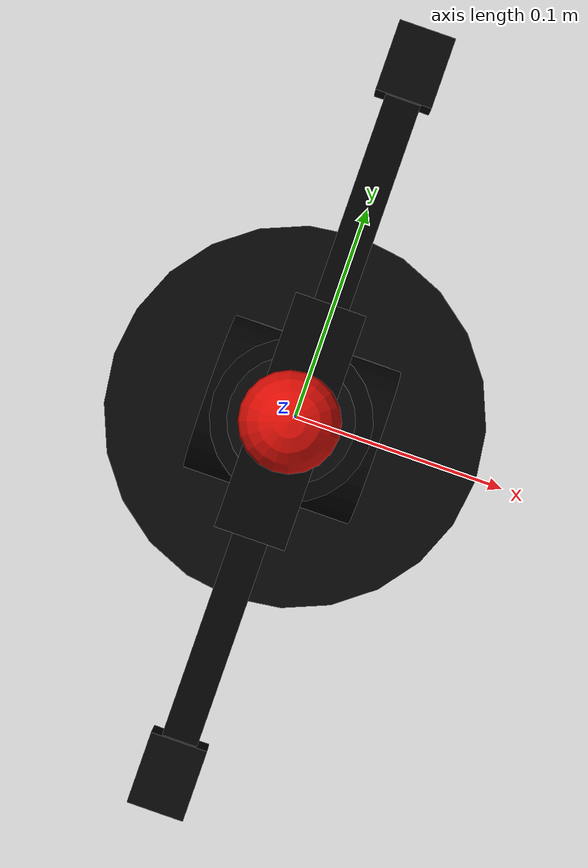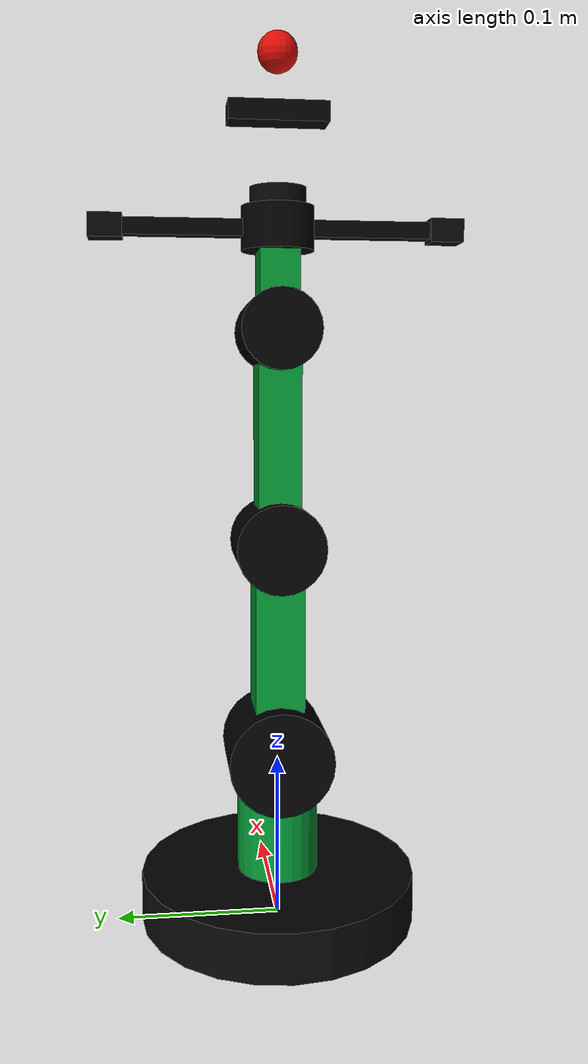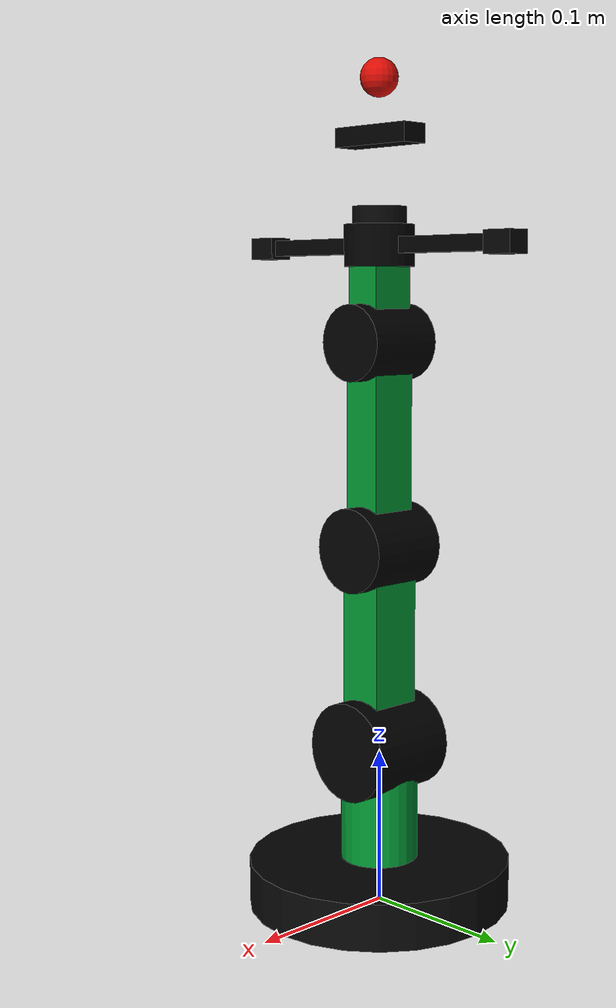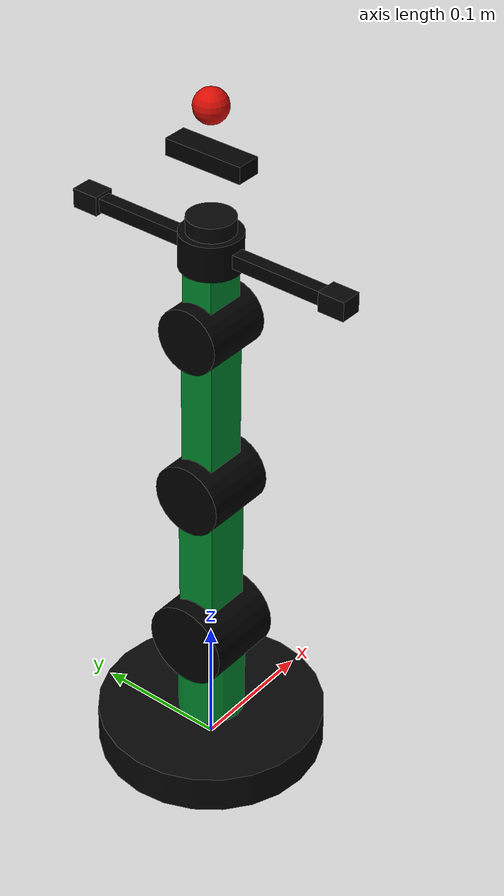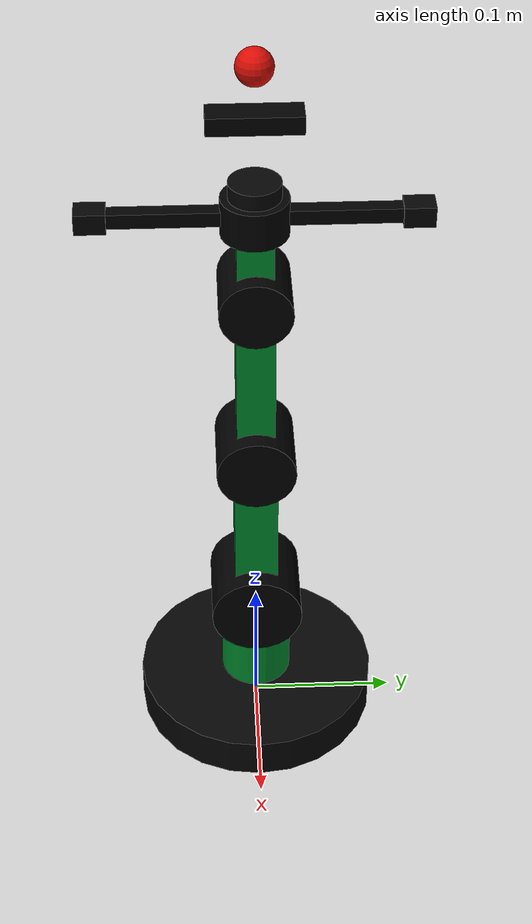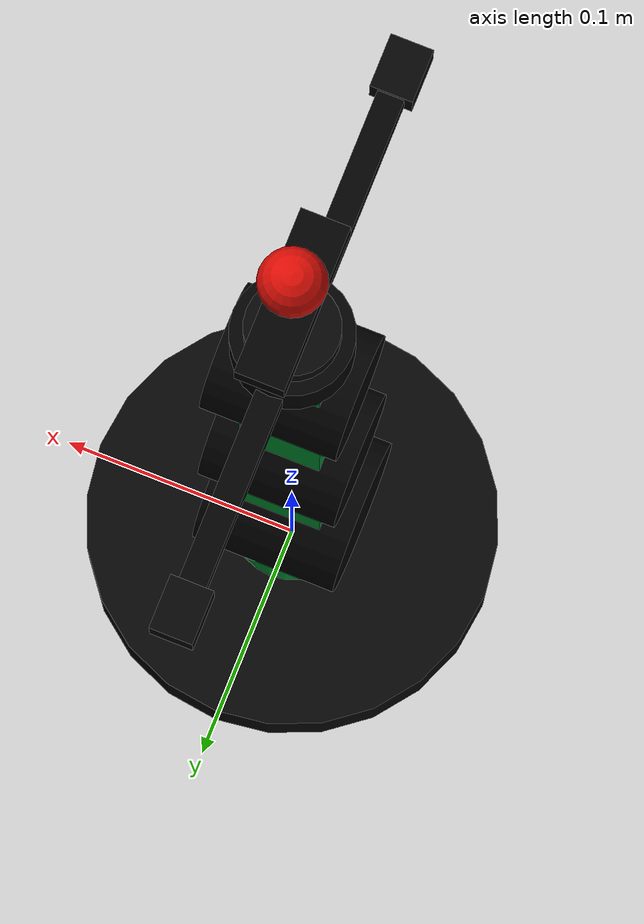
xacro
<?xml version="1.0"?>
<robot name="jetarm" xmlns:xacro="http://www.ros.org/wiki/xacro">
  <!-- Initial measured model. Units are meters and radians. -->
  <xacro:property name="base_to_joint2" value="0.105"/>
  <xacro:property name="link_23" value="0.13"/>
  <xacro:property name="link_34" value="0.13"/>
  <xacro:property name="link_45" value="0.06"/>
  <xacro:property name="link_5_tcp" value="0.102"/>

  <xacro:property name="j1_limit" value="2.0943951023931953"/>
  <xacro:property name="j2_lower" value="0.0"/>
  <xacro:property name="j2_upper" value="1.5707963267948966"/>
  <xacro:property name="j3_limit" value="2.0943951023931953"/>
  <xacro:property name="j4_lower" value="-2.0943951023931953"/>
  <xacro:property name="j4_upper" value="2.0943951023931953"/>
  <xacro:property name="j5_limit" value="1.0471975511965976"/>
  <xacro:property name="j6_visual_closed_angle" value="1.5707963267948966"/>
  <xacro:property name="j6_visual_open_angle" value="1.5707963267948966"/>
  <xacro:property name="gripper_arm_length" value="0.102"/>

  <material name="jetarm_green">
    <color rgba="0.0 0.55 0.18 1.0"/>
  </material>
  <material name="jetarm_dark">
    <color rgba="0.02 0.02 0.025 1.0"/>
  </material>
  <material name="joint_black">
    <color rgba="0.0 0.0 0.0 1.0"/>
  </material>
  <material name="tcp_red">
    <color rgba="0.85 0.05 0.02 1.0"/>
  </material>
  <material name="finger_rubber">
    <color rgba="0.015 0.015 0.018 1.0"/>
  </material>

  <link name="base_link">
    <visual>
      <origin xyz="0 0 0.015" rpy="0 0 0"/>
      <geometry>
        <cylinder radius="0.085" length="0.03"/>
      </geometry>
      <material name="jetarm_dark"/>
    </visual>
    <collision>
      <origin xyz="0 0 0.015" rpy="0 0 0"/>
      <geometry>
        <cylinder radius="0.085" length="0.03"/>
      </geometry>
    </collision>
  </link>

  <joint name="joint1_base_yaw" type="revolute">
    <parent link="base_link"/>
    <child link="base_yaw_link"/>
    <origin xyz="0 0 0" rpy="0 0 0"/>
    <axis xyz="0 0 1"/>
    <limit lower="${-j1_limit}" upper="${j1_limit}" effort="8.0" velocity="1.0"/>
  </joint>

  <link name="base_yaw_link">
    <visual>
      <origin xyz="0 0 ${base_to_joint2 / 2.0}" rpy="0 0 0"/>
      <geometry>
        <cylinder radius="0.025" length="${base_to_joint2}"/>
      </geometry>
      <material name="jetarm_green"/>
    </visual>
    <visual>
      <origin xyz="0 0 ${base_to_joint2}" rpy="0 1.5707963267948966 0"/>
      <geometry>
        <cylinder radius="0.032" length="0.06"/>
      </geometry>
      <material name="joint_black"/>
    </visual>
  </link>

  <joint name="joint2_shoulder_pitch" type="revolute">
    <parent link="base_yaw_link"/>
    <child link="upper_arm_link"/>
    <origin xyz="0 0 ${base_to_joint2}" rpy="0 0 0"/>
    <axis xyz="0 1 0"/>
    <limit lower="${j2_lower}" upper="${j2_upper}" effort="12.0" velocity="1.0"/>
  </joint>

  <link name="upper_arm_link">
    <visual>
      <origin xyz="0 0 ${link_23 / 2.0}" rpy="0 0 0"/>
      <geometry>
        <box size="0.035 0.03 ${link_23}"/>
      </geometry>
      <material name="jetarm_green"/>
    </visual>
    <visual>
      <origin xyz="0 0 ${link_23}" rpy="0 1.5707963267948966 0"/>
      <geometry>
        <cylinder radius="0.027" length="0.055"/>
      </geometry>
      <material name="joint_black"/>
    </visual>
  </link>

  <joint name="joint3_elbow_pitch" type="revolute">
    <parent link="upper_arm_link"/>
    <child link="forearm_link"/>
    <origin xyz="0 0 ${link_23}" rpy="0 0 0"/>
    <axis xyz="0 1 0"/>
    <limit lower="${-j3_limit}" upper="${j3_limit}" effort="8.0" velocity="1.0"/>
  </joint>

  <link name="forearm_link">
    <visual>
      <origin xyz="0 0 ${link_34 / 2.0}" rpy="0 0 0"/>
      <geometry>
        <box size="0.032 0.026 ${link_34}"/>
      </geometry>
      <material name="jetarm_green"/>
    </visual>
    <visual>
      <origin xyz="0 0 ${link_34}" rpy="0 1.5707963267948966 0"/>
      <geometry>
        <cylinder radius="0.024" length="0.052"/>
      </geometry>
      <material name="joint_black"/>
    </visual>
  </link>

  <joint name="joint4_wrist_pitch" type="revolute">
    <parent link="forearm_link"/>
    <child link="wrist_pitch_link"/>
    <origin xyz="0 0 ${link_34}" rpy="0 0 0"/>
    <axis xyz="0 1 0"/>
    <limit lower="${j4_lower}" upper="${j4_upper}" effort="5.0" velocity="1.0"/>
  </joint>

  <link name="wrist_pitch_link">
    <visual>
      <origin xyz="0 0 ${link_45 / 2.0}" rpy="0 0 0"/>
      <geometry>
        <box size="0.03 0.024 ${link_45}"/>
      </geometry>
      <material name="jetarm_green"/>
    </visual>
    <visual>
      <origin xyz="0 0 ${link_45}" rpy="0 0 0"/>
      <geometry>
        <cylinder radius="0.022" length="0.026"/>
      </geometry>
      <material name="joint_black"/>
    </visual>
  </link>

  <joint name="joint5_wrist_roll" type="revolute">
    <parent link="wrist_pitch_link"/>
    <child link="tool_roll_link"/>
    <origin xyz="0 0 ${link_45}" rpy="0 0 0"/>
    <axis xyz="0 0 1"/>
    <limit lower="${-j5_limit}" upper="${j5_limit}" effort="4.0" velocity="1.0"/>
  </joint>

  <link name="tool_roll_link">
    <visual>
      <origin xyz="0 0 0.012" rpy="0 0 0"/>
      <geometry>
        <cylinder radius="0.017" length="0.024"/>
      </geometry>
      <material name="jetarm_dark"/>
    </visual>
    <visual>
      <origin xyz="0 0 0" rpy="0 0 0"/>
      <geometry>
        <sphere radius="0.014"/>
      </geometry>
      <material name="jetarm_dark"/>
    </visual>
  </link>

  <joint name="tcp_fixed_joint" type="fixed">
    <parent link="tool_roll_link"/>
    <child link="tcp_link"/>
    <origin xyz="0 0 ${link_5_tcp}" rpy="0 0 0"/>
  </joint>

  <link name="tcp_link">
    <visual>
      <origin xyz="0 0 0" rpy="0 0 0"/>
      <geometry>
        <sphere radius="0.012"/>
      </geometry>
      <material name="tcp_red"/>
    </visual>
    <visual>
      <origin xyz="0 0 -0.035" rpy="0 0 0"/>
      <geometry>
        <box size="0.018 0.06 0.012"/>
      </geometry>
      <material name="joint_black"/>
    </visual>
  </link>

  <joint name="joint6_gripper" type="revolute">
    <parent link="tool_roll_link"/>
    <child link="left_gripper_finger_link"/>
    <origin xyz="0 0 0" rpy="${-j6_visual_open_angle} 0 0"/>
    <axis xyz="1 0 0"/>
    <limit lower="0.0" upper="${j6_visual_closed_angle}" effort="2.0" velocity="0.5"/>
  </joint>

  <link name="left_gripper_finger_link">
    <visual>
      <origin xyz="0 0 ${gripper_arm_length / 2.0}" rpy="0 0 0"/>
      <geometry>
        <box size="0.010 0.010 ${gripper_arm_length}"/>
      </geometry>
      <material name="joint_black"/>
    </visual>
    <visual>
      <origin xyz="0 0 ${gripper_arm_length}" rpy="0 0 0"/>
      <geometry>
        <box size="0.016 0.014 0.020"/>
      </geometry>
      <material name="finger_rubber"/>
    </visual>
    <collision>
      <origin xyz="0 0 ${gripper_arm_length / 2.0}" rpy="0 0 0"/>
      <geometry>
        <box size="0.010 0.010 ${gripper_arm_length}"/>
      </geometry>
    </collision>
  </link>

  <joint name="joint6_gripper_mimic" type="revolute">
    <parent link="tool_roll_link"/>
    <child link="right_gripper_finger_link"/>
    <origin xyz="0 0 0" rpy="${j6_visual_open_angle} 0 0"/>
    <axis xyz="1 0 0"/>
    <limit lower="${-j6_visual_closed_angle}" upper="0.0" effort="2.0" velocity="0.5"/>
    <mimic joint="joint6_gripper" multiplier="-1.0" offset="0.0"/>
  </joint>

  <link name="right_gripper_finger_link">
    <visual>
      <origin xyz="0 0 ${gripper_arm_length / 2.0}" rpy="0 0 0"/>
      <geometry>
        <box size="0.010 0.010 ${gripper_arm_length}"/>
      </geometry>
      <material name="joint_black"/>
    </visual>
    <visual>
      <origin xyz="0 0 ${gripper_arm_length}" rpy="0 0 0"/>
      <geometry>
        <box size="0.016 0.014 0.020"/>
      </geometry>
      <material name="finger_rubber"/>
    </visual>
    <collision>
      <origin xyz="0 0 ${gripper_arm_length / 2.0}" rpy="0 0 0"/>
      <geometry>
        <box size="0.010 0.010 ${gripper_arm_length}"/>
      </geometry>
    </collision>
  </link>
</robot>
